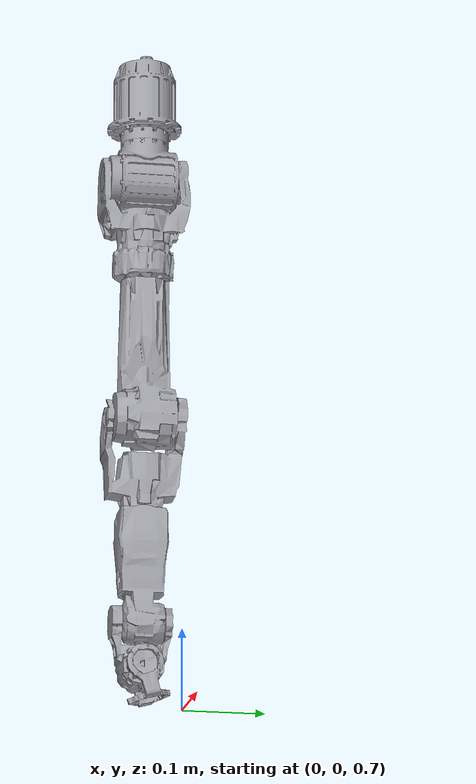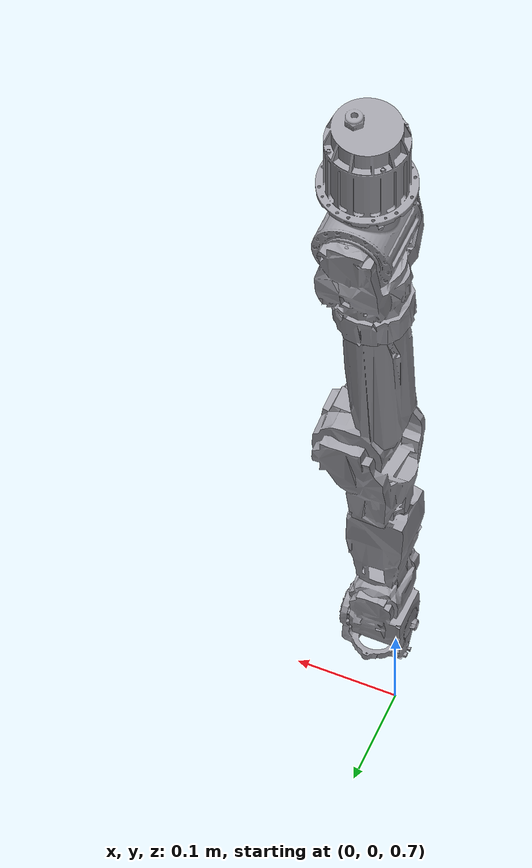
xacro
<?xml version="1.0" encoding="utf-8"?>
<!-- 机械臂模型唯一真源（launch 里由 xacro 现场展开，不再维护中间的 arm.urdf）
     用法: xacro arm.urdf.xacro [meshes_dir:=/path/to/meshes]
     默认 mesh 走 package://temp_description/meshes -->

<robot name="youbi_tc7_arm" xmlns:xacro="http://www.ros.org/wiki/xacro">
  <xacro:arg name="meshes_dir" default="package://temp_description/meshes"/>
  <!-- 肩部悬挂安装：根部固定在 1.5 m 高处，零位机械臂由上向下伸直。 -->
  <xacro:arg name="base_xyz" default="0 0 1.5"/>
  <xacro:arg name="base_rpy" default="3.141592653589793 0 0"/>
  <material name="silver"><color rgba="0.62 0.62 0.65 1.0"/></material>
  <material name="BlackAccent"><color rgba="0.15 0.15 0.15 1.0"/></material>
  <link name="world">
    <inertial>
      <origin xyz="0 0 0" rpy="0 0 0"/>
      <mass value="0.001"/>
      <inertia ixx="1e-09" ixy="0" ixz="0" iyy="1e-09" iyz="0" izz="1e-09"/>
    </inertial>
  </link>
  <joint name="fixed_base" type="fixed">
    <origin xyz="$(arg base_xyz)" rpy="$(arg base_rpy)"/>
    <parent link="world"/><child link="base_link"/>
  </joint>
  <link name="base_link">
    <inertial>
      <origin xyz="0.053863 0.056366 0.055898" rpy="0 0 0"/>
      <mass value="0.932313"/>
      <inertia ixx="0.00089482" ixy="-0.00000021" ixz="0.00000331" iyy="0.00089589" iyz="-0.00000016" izz="0.00061547"/>
    </inertial>
    <visual><origin xyz="-0.000000 -0.000000 -0.000000" rpy="0 0 0"/><geometry><mesh scale="0.001 0.001 0.001" filename="$(arg meshes_dir)/base_link.STL"/></geometry><material name="silver"/></visual>
    <collision><origin xyz="-0.000000 -0.000000 -0.000000" rpy="0 0 0"/><geometry><mesh scale="0.001 0.001 0.001" filename="$(arg meshes_dir)/collision/base_link.STL"/></geometry></collision>
  </link>

  <link name="link2">
    <inertial>
      <origin xyz="-0.001368 0.001385 0.054783" rpy="0 0 0"/>
      <mass value="0.941032"/>
      <inertia ixx="0.00092543" ixy="-0.00000031" ixz="-0.00000055" iyy="0.00073658" iyz="-0.00001555" izz="0.00079202"/>
    </inertial>
    <visual><origin xyz="-0.055130 -0.057630 -0.099000" rpy="0 0 0"/><geometry><mesh scale="0.001 0.001 0.001" filename="$(arg meshes_dir)/link2.STL"/></geometry><material name="silver"/></visual>
    <collision><origin xyz="-0.055130 -0.057630 -0.099000" rpy="0 0 0"/><geometry><mesh scale="0.001 0.001 0.001" filename="$(arg meshes_dir)/collision/link2.STL"/></geometry></collision>
  </link>

  <link name="link3">
    <inertial>
      <origin xyz="-0.004568 -0.001134 0.071755" rpy="0 0 0"/>
      <mass value="0.908943"/>
      <inertia ixx="0.00170433" ixy="0.00000682" ixz="0.00004746" iyy="0.00139506" iyz="-0.00011143" izz="0.00094937"/>
    </inertial>
    <visual><origin xyz="-0.053530 -0.055500 -0.162730" rpy="0 0 0"/><geometry><mesh scale="0.001 0.001 0.001" filename="$(arg meshes_dir)/link3.STL"/></geometry><material name="silver"/></visual>
    <collision><origin xyz="-0.053530 -0.055500 -0.162730" rpy="0 0 0"/><geometry><mesh scale="0.001 0.001 0.001" filename="$(arg meshes_dir)/collision/link3.STL"/></geometry></collision>
  </link>

  <link name="link4">
    <inertial>
      <origin xyz="0.005345 -0.001991 0.135546" rpy="0 0 0"/>
      <mass value="1.194347"/>
      <inertia ixx="0.00465833" ixy="0.00002099" ixz="-0.00046776" iyy="0.00477377" iyz="0.00011943" izz="0.00093769"/>
    </inertial>
    <visual><origin xyz="-0.046130 -0.055870 -0.283200" rpy="0 0 0"/><geometry><mesh scale="0.001 0.001 0.001" filename="$(arg meshes_dir)/link4.STL"/></geometry><material name="silver"/></visual>
    <collision><origin xyz="-0.046130 -0.055870 -0.283200" rpy="0 0 0"/><geometry><mesh scale="0.001 0.001 0.001" filename="$(arg meshes_dir)/collision/link4.STL"/></geometry></collision>
  </link>

  <link name="link5">
    <inertial>
      <origin xyz="-0.020585 -0.002782 0.057406" rpy="0 0 0"/>
      <mass value="0.497729"/>
      <inertia ixx="0.00094281" ixy="0.00002490" ixz="0.00010276" iyy="0.00068140" iyz="-0.00010777" izz="0.00052552"/>
    </inertial>
    <visual><origin xyz="-0.059000 -0.054200 -0.461600" rpy="0 0 0"/><geometry><mesh scale="0.001 0.001 0.001" filename="$(arg meshes_dir)/link5.STL"/></geometry><material name="silver"/></visual>
    <collision><origin xyz="-0.059000 -0.054200 -0.461600" rpy="0 0 0"/><geometry><mesh scale="0.001 0.001 0.001" filename="$(arg meshes_dir)/collision/link5.STL"/></geometry></collision>
  </link>

  <link name="link6">
    <inertial>
      <origin xyz="-0.002612 -0.003611 0.092435" rpy="0 0 0"/>
      <mass value="0.471725"/>
      <inertia ixx="0.00131560" ixy="0.00000016" ixz="0.00000036" iyy="0.00132771" iyz="0.00007030" izz="0.00025082"/>
    </inertial>
    <visual><origin xyz="-0.037530 -0.056230 -0.571250" rpy="0 0 0"/><geometry><mesh scale="0.001 0.001 0.001" filename="$(arg meshes_dir)/link6.STL"/></geometry><material name="silver"/></visual>
    <collision><origin xyz="-0.037530 -0.056230 -0.571250" rpy="0 0 0"/><geometry><mesh scale="0.001 0.001 0.001" filename="$(arg meshes_dir)/collision/link6.STL"/></geometry></collision>
  </link>

  <link name="link7">
    <inertial>
      <origin xyz="-0.000784 0.000848 0.044495" rpy="0 0 0"/>
      <mass value="0.321277"/>
      <inertia ixx="0.00026998" ixy="-0.00000026" ixz="0.00000170" iyy="0.00022469" iyz="0.00000265" izz="0.00017606"/>
    </inertial>
    <visual><origin xyz="-0.034070 -0.055700 -0.705830" rpy="0 0 0"/><geometry><mesh scale="0.001 0.001 0.001" filename="$(arg meshes_dir)/link7.STL"/></geometry><material name="silver"/></visual>
    <collision><origin xyz="-0.034070 -0.055700 -0.705830" rpy="0 0 0"/><geometry><mesh scale="0.001 0.001 0.001" filename="$(arg meshes_dir)/collision/link7.STL"/></geometry></collision>
  </link>

  <link name="tool_link">
    <inertial>
      <origin xyz="0.003921 -0.001848 0.018660" rpy="0 0 0"/>
      <mass value="0.048583"/>
      <inertia ixx="0.00002323" ixy="0.00000022" ixz="-0.00000085" iyy="0.00004981" iyz="0.00000279" izz="0.00003976"/>
    </inertial>
    <visual><origin xyz="-0.033900 -0.053470 -0.758570" rpy="0 0 0"/><geometry><mesh scale="0.001 0.001 0.001" filename="$(arg meshes_dir)/tool_link.STL"/></geometry><material name="silver"/></visual>
    <collision><origin xyz="-0.033900 -0.053470 -0.758570" rpy="0 0 0"/><geometry><mesh scale="0.001 0.001 0.001" filename="$(arg meshes_dir)/collision/tool_link.STL"/></geometry></collision>
  </link>

  <link name="hand_mount">
    <inertial>
      <origin xyz="0 0 0" rpy="0 0 0"/>
      <mass value="0.01"/>
      <inertia ixx="1e-06" ixy="0" ixz="0" iyy="1e-06" iyz="0" izz="1e-06"/>
    </inertial>
  </link>
  <joint name="hand_mount_joint" type="fixed">
    <origin xyz="0.002590 -0.005280 0.039590" rpy="0.2170 0.0000 0.0000"/>
    <parent link="tool_link"/><child link="hand_mount"/>
  </joint>

  <joint name="joint1" type="revolute">
    <origin xyz="0.055130 0.057630 0.099000" rpy="0 0 0"/>
    <parent link="base_link"/><child link="link2"/>
    <axis xyz="0.000000 0.000000 1.000000"/>
    <limit lower="-3.1416" upper="3.1416" effort="100.000000" velocity="2.000000"/>
  </joint>

  <joint name="joint2" type="revolute">
    <origin xyz="-0.001600 -0.002130 0.063730" rpy="0 0 0"/>
    <parent link="link2"/><child link="link3"/>
    <axis xyz="0.000000 1.000000 0.000000"/>
    <limit lower="-1.8326" upper="1.8326" effort="100.000000" velocity="2.000000"/>
  </joint>

  <joint name="joint3" type="revolute">
    <origin xyz="-0.007400 0.000370 0.120470" rpy="0 0 0"/>
    <parent link="link3"/><child link="link4"/>
    <axis xyz="0.000000 0.000000 1.000000"/>
    <limit lower="-3.1416" upper="3.1416" effort="100.000000" velocity="2.000000"/>
  </joint>

  <joint name="joint4" type="revolute">
    <origin xyz="0.012870 -0.001670 0.178400" rpy="0 0 0"/>
    <parent link="link4"/><child link="link5"/>
    <axis xyz="0.000000 1.000000 0.000000"/>
    <limit lower="0.0000" upper="2.9671" effort="100.000000" velocity="2.000000"/>
  </joint>

  <joint name="joint5" type="revolute">
    <origin xyz="-0.021470 0.002030 0.109650" rpy="0 0 0"/>
    <parent link="link5"/><child link="link6"/>
    <axis xyz="0.000000 0.000000 1.000000"/>
    <limit lower="-3.1416" upper="3.1416" effort="100.000000" velocity="2.000000"/>
  </joint>

  <joint name="joint6" type="revolute">
    <origin xyz="-0.003460 -0.000530 0.134580" rpy="0 0 0"/>
    <parent link="link6"/><child link="link7"/>
    <axis xyz="0.000000 1.000000 0.000000"/>
    <limit lower="-1.8326" upper="1.8326" effort="100.000000" velocity="2.000000"/>
  </joint>

  <joint name="joint7" type="revolute">
    <origin xyz="-0.000170 -0.002230 0.052740" rpy="0 0 0"/>
    <parent link="link7"/><child link="tool_link"/>
    <axis xyz="-1.000000 0.000000 0.000000"/>
    <limit lower="-1.5708" upper="1.5708" effort="100.000000" velocity="2.000000"/>
  </joint>

</robot>
